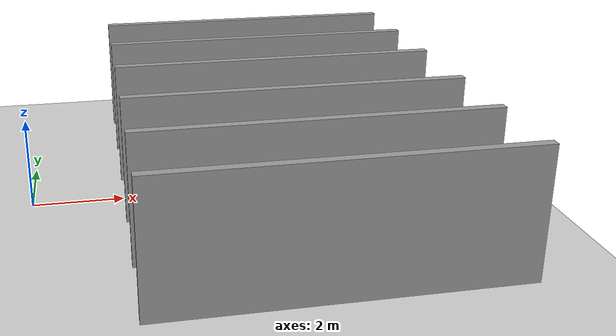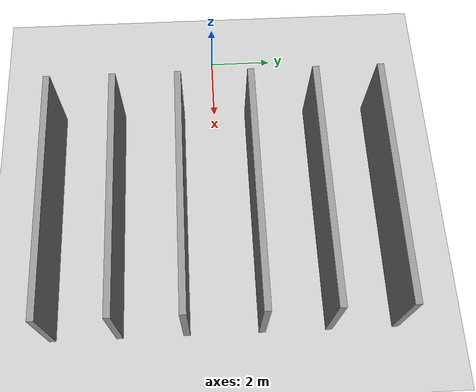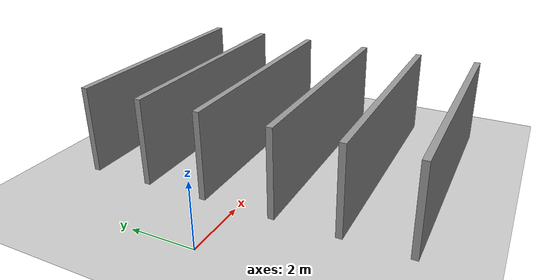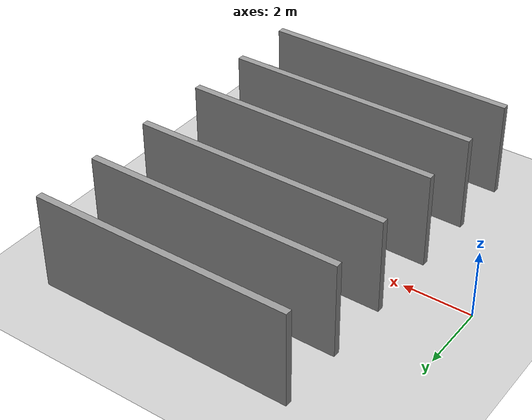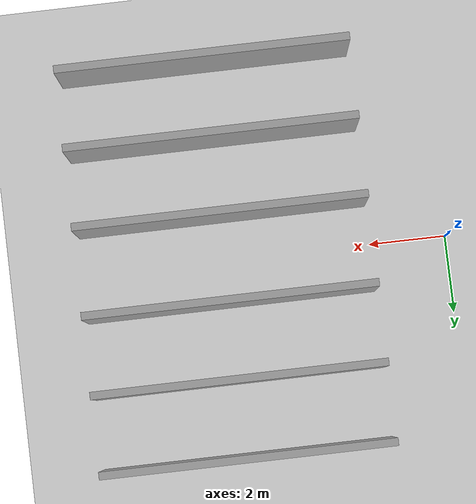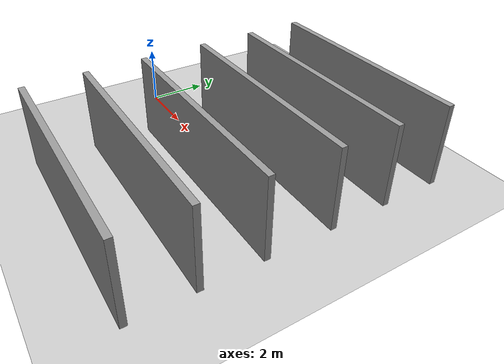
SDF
<?xml version="1.0" ?>

<sdf version="1.5">
	<world name="default">
		<include>
			<uri>model://sun</uri>
		</include>

		<include>
			<uri>model://ground_plane</uri>
		</include>

		<gui>
			<camera name="camera">
				<pose>-6.663162 0.1 2 0 0 0</pose>
			</camera>
		</gui>

		<!-- rows -->
		<include>
			<uri>model://grey_wall</uri>
			<name>wall_1</name>
			<pose>5.752843 -5.123935 0 0 0 3.14</pose>
		</include>
		<include>
			<uri>model://grey_wall</uri>
			<name>wall_2</name>
			<pose>5.752843 -3.123935 0 0 0 3.14</pose>
		</include>
		<include>
			<uri>model://grey_wall</uri>
			<name>wall_3</name>
			<pose>5.752843 -1.123935 0 0 0 3.14</pose>
		</include>
		<include>
			<uri>model://grey_wall</uri>
			<name>wall_4</name>
			<pose>5.752843 1.123935 0 0 0 3.14</pose>
		</include>
		<include>
			<uri>model://grey_wall</uri>
			<name>wall_5</name>
			<pose>5.752843 3.123935 0 0 0 3.14</pose>
		</include>
		<include>
			<uri>model://grey_wall</uri>
			<name>wall_6</name>
			<pose>5.752843 5.123935 0 0 0 3.14</pose>
		</include>

	</world>
</sdf>

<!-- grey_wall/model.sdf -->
<sdf version="1.5">
  <model name="grey_wall">
    <static>true</static>
    <link name="link">
      <pose>0 0 1.4 0 0 0</pose>
      <collision name="collision">
        <geometry>
          <box>
            <size>7.5 0.2 2.8</size>
          </box>
        </geometry>
      </collision>
      <visual name="visual">
        <cast_shadows>false</cast_shadows>
        <geometry>
          <box>
            <size>7.5 0.2 2.8</size>
          </box>
        </geometry>
        <material>
          <script>
            <uri>model://../model_source/models/grey_wall/materials/scripts</uri>
            <uri>model://../model_source/models/grey_wall/materials/textures</uri>
            <name>vrc/grey_wall</name>
          </script>
        </material>
      </visual>
    </link>
  </model>
</sdf>
